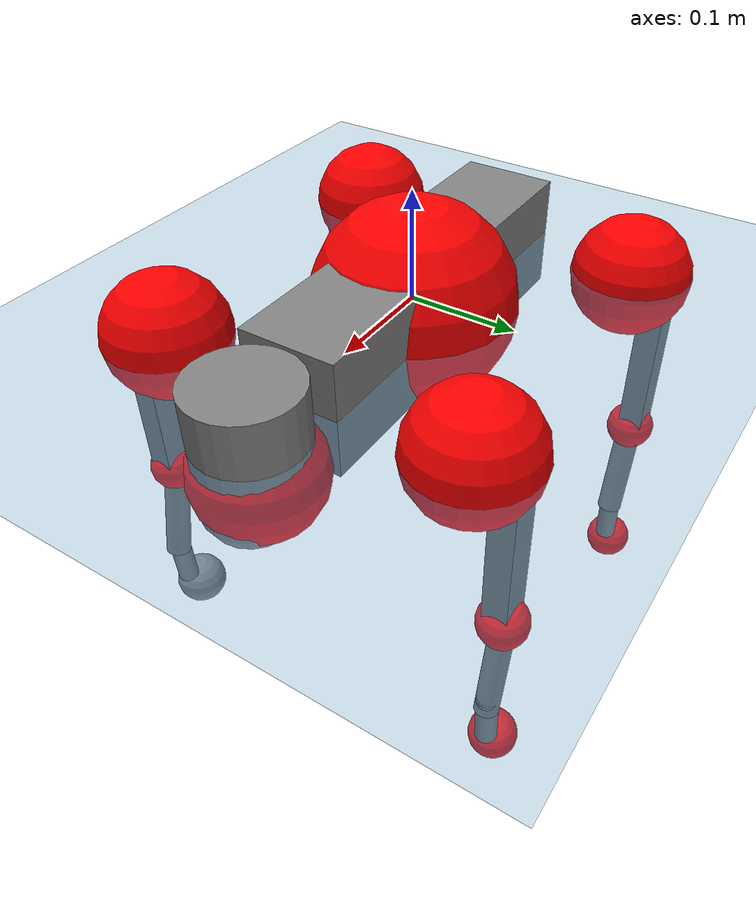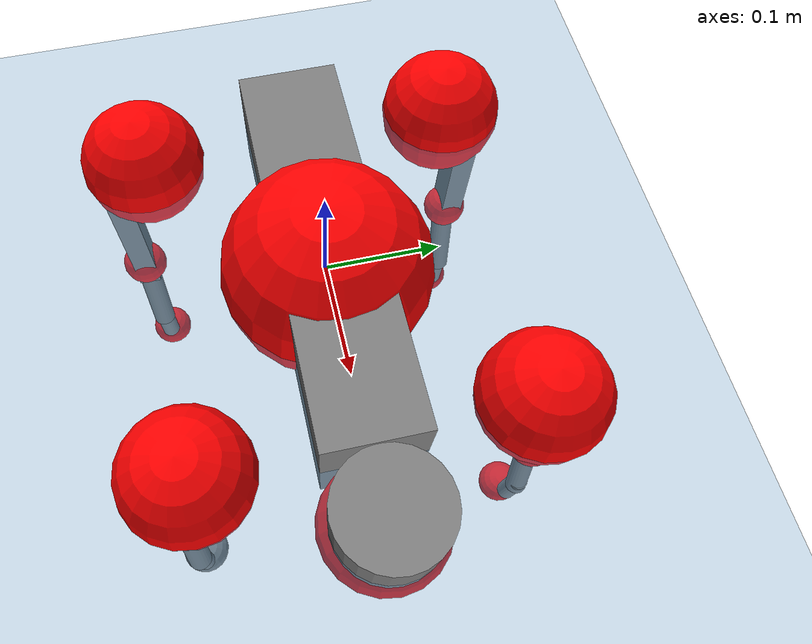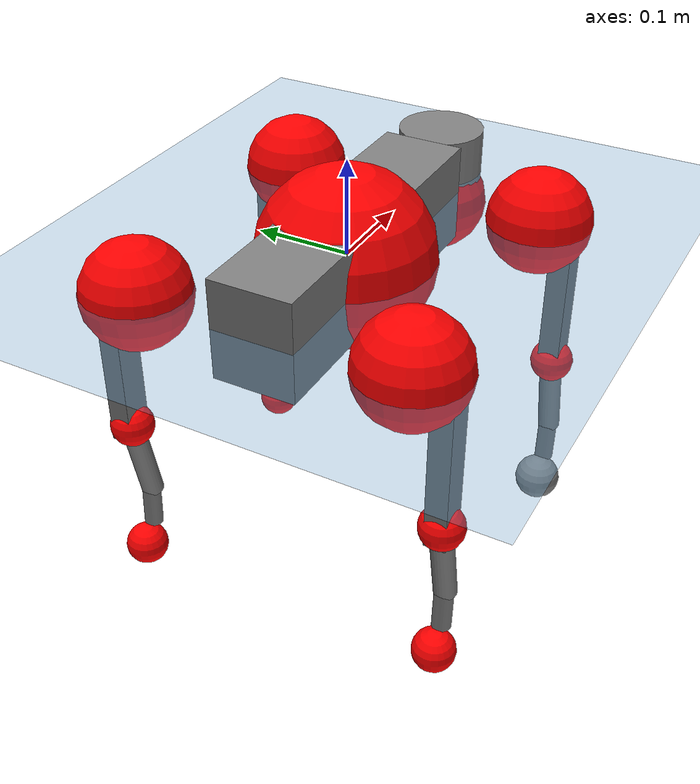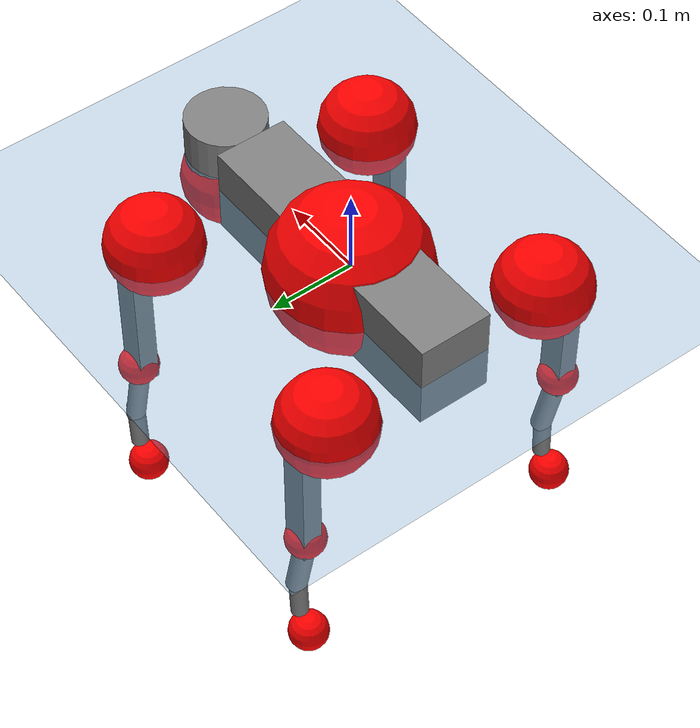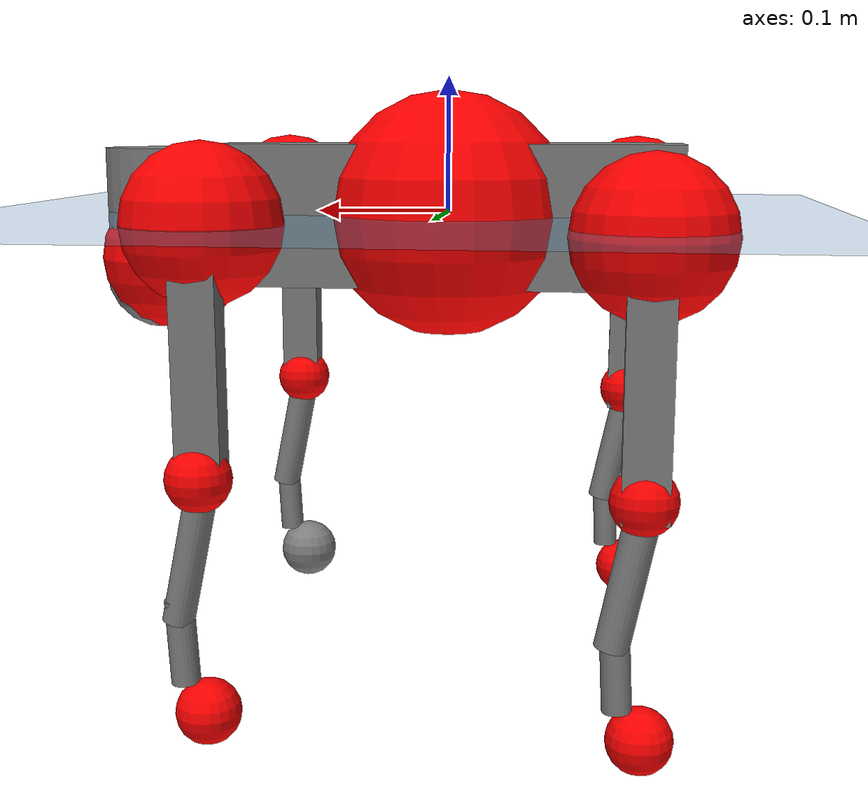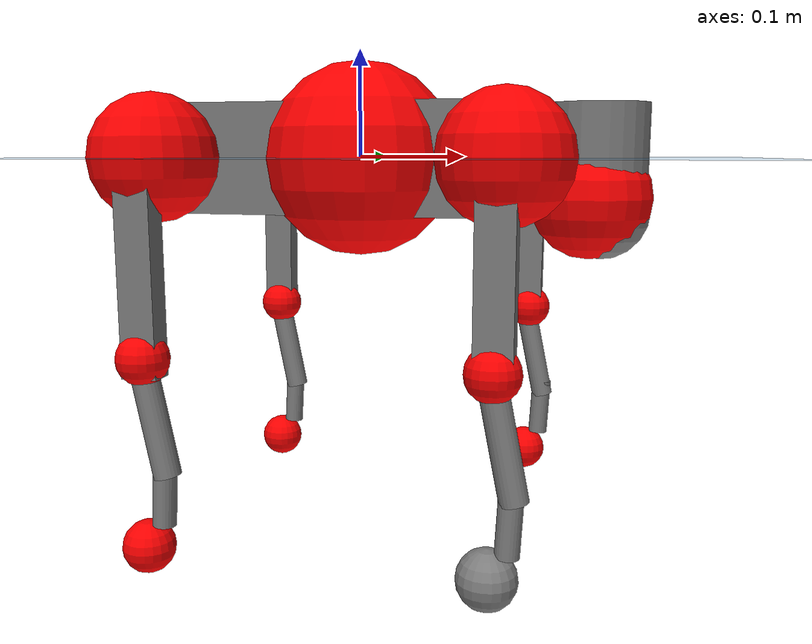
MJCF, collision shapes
<mujoco model="go2">
  <compiler angle="radian" assetdir="assets" balanceinertia="true" inertiafromgeom="false"/>

  <option timestep="0.005" density="1.2" viscosity="2e-05"/>

  <size nkey="1"/>

  <visual>
    <quality shadowsize="8192"/>
    <map shadowclip="0.5"/>
  </visual>

  <default>
    <default class="/">
      <geom contype="0" conaffinity="0" group="1" solref="-1000 -80"/>
      <site size="0.01 0.005 0.005" group="5"/>
      <general forcelimited="true" biastype="affine" gainprm="20" biasprm="0 -20 -0.5"/>
      <default class="go2">
        <joint armature="0.01" damping="0.01" frictionloss="0.2"/>
        <geom condim="1" margin="0.001"/>
        <default class="visual">
          <geom type="mesh" group="2"/>
        </default>
        <default class="collision">
          <geom group="3"/>
          <default class="foot">
            <geom size="0.022 0 0" condim="6" priority="1" friction="0.8 0.02 0.01" solimp="0.015 1 0.022"/>
          </default>
        </default>
        <default class="reward_collision_sphere">
          <geom group="5" rgba="1 0 0 1"/>
        </default>
      </default>
    </default>
  </default>

  <asset>
    <texture type="skybox" colorspace="auto" name="//unnamed_texture_0" builtin="gradient" rgb1="0.95 0.95 0.95" rgb2="0.95 0.95 0.95" width="100" height="600"/>
    <texture type="2d" colorspace="auto" name="texplane" builtin="checker" rgb1="0.345 0.575 0.748" rgb2="0.345 0.575 0.748" markrgb="1 1 1" width="512" height="512"/>
    <material name="MatPlane" class="/" texture="texplane" texuniform="true" texrepeat="2 2" specular="0.9"/>
    <material name="metal" class="/" rgba="0.9 0.95 0.95 1"/>
    <material name="black" class="/" rgba="0 0 0 1"/>
    <material name="white" class="/"/>
    <material name="gray" class="/" rgba="0.671705 0.692426 0.77427 1"/>
    <mesh name="base_0" class="/" file="base_0.obj"/>
    <mesh name="base_1" class="/" file="base_1.obj"/>
    <mesh name="base_2" class="/" file="base_2.obj"/>
    <mesh name="base_3" class="/" file="base_3.obj"/>
    <mesh name="base_4" class="/" file="base_4.obj"/>
    <mesh name="hip_0" class="/" file="hip_0.obj"/>
    <mesh name="hip_1" class="/" file="hip_1.obj"/>
    <mesh name="thigh_0" class="/" file="thigh_0.obj"/>
    <mesh name="thigh_1" class="/" file="thigh_1.obj"/>
    <mesh name="thigh_mirror_0" class="/" file="thigh_mirror_0.obj"/>
    <mesh name="thigh_mirror_1" class="/" file="thigh_mirror_1.obj"/>
    <mesh name="calf_0" class="/" file="calf_0.obj"/>
    <mesh name="calf_1" class="/" file="calf_1.obj"/>
    <mesh name="calf_mirror_0" class="/" file="calf_mirror_0.obj"/>
    <mesh name="calf_mirror_1" class="/" file="calf_mirror_1.obj"/>
    <mesh name="foot" class="/" file="foot.obj"/>
  </asset>

  <worldbody>
    <geom name="floor" class="/" size="100 100 0.125" type="plane" group="0" material="MatPlane"/>
    <light name="toplight_shadow" class="/" pos="0 0 5" dir="0.0990148 0.0990148 -0.990148" type="directional" ambient="0.04 0.04 0.04" diffuse="0.55 0.55 0.55" specular="0.12 0.12 0.12"/>
    <light name="toplight_fill" class="/" pos="0 0 5" dir="0.0990148 0.0990148 -0.990148" type="directional" castshadow="false" ambient="0.04 0.04 0.04" diffuse="0.3 0.3 0.3" specular="0.08 0.08 0.08"/>
    <body name="trunk" childclass="go2" pos="-0.000249865 0.00163856 -0.0017059" quat="1 -0.000318709 0.000320217 0.000715263">
      <inertial pos="0.0166366 0.00622647 -0.00630975" quat="0.000792633 0.714239 -0.000544483 0.699901" mass="5.69644" diaginertia="0.033935 0.288333 0.00729858"/>
      <joint name="//unnamed_joint_0" type="free" armature="0" damping="0" frictionloss="0"/>
      <geom name="//unnamed_geom_1" class="visual" material="black" mesh="base_0"/>
      <geom name="//unnamed_geom_2" class="visual" material="black" mesh="base_1"/>
      <geom name="//unnamed_geom_3" class="visual" material="black" mesh="base_2"/>
      <geom name="//unnamed_geom_4" class="visual" material="white" mesh="base_3"/>
      <geom name="//unnamed_geom_5" class="visual" material="gray" mesh="base_4"/>
      <geom name="trunk_1" class="collision" size="0.174185 0.0432915 0.0527833" type="box"/>
      <geom name="trunk_2" class="collision" size="0.0463011 0.041671" pos="0.220019 0 0.00780969" type="cylinder"/>
      <geom name="trunk_3" class="collision" size="0.043523" pos="0.226195 0 -0.0468582"/>
      <geom name="//unnamed_geom_9" class="reward_collision_sphere" size="0.0926022"/>
      <geom name="//unnamed_geom_10" class="reward_collision_sphere" size="0.0555613" pos="0.216159 0 -0.0351436"/>
      <site name="imu" pos="-0.0303113 0.00780395 0.0407726" size="0.00926022"/>
      <camera name="track" pos="0 -2.4502 0" quat="0.707107 0.707107 0 0" mode="trackcom"/>
      <camera name="ego_camera" pos="0.240863 0 0.0351436" quat="-0.5 -0.5 0.5 0.5"/>
      <body name="FL_hip" pos="0.150048 0.057989 0.00182003" quat="1 0.000228875 -0.000586187 0.000752415">
        <inertial pos="-0.00453599 0.00599095 0.00162792" quat="0.485681 0.519262 0.520175 0.473179" mass="0.558728" diaginertia="0.00024405 0.00168317 0.000140991"/>
        <joint name="FL_hip_joint" pos="0 0 0" axis="0.999991 0.00164995 0.00393571" range="-1.04481 1.0002" armature="0.0088557" damping="0.0245415" frictionloss="0.187266"/>
        <geom name="//unnamed_geom_11" class="visual" material="metal" mesh="hip_0"/>
        <geom name="//unnamed_geom_12" class="visual" material="gray" mesh="hip_1"/>
        <geom name="//unnamed_geom_13" class="collision" size="0.042597 0.0185204" pos="0 0.098008 0" quat="0.707107 0.707107 0 0" type="cylinder"/>
        <geom name="//unnamed_geom_14" class="reward_collision_sphere" size="0.0555613" pos="0 0.085757 0"/>
        <body name="FL_thigh" pos="-0.00323078 0.116799 0.00179629" quat="0.999994 0.0012049 0.00309609 0.00016545">
          <inertial pos="-0.00435754 -0.0340094 -0.027683" quat="0.827572 0.0820932 -0.0189411 0.555002" mass="0.91009" diaginertia="0.00171743 0.0148621 0.000253777"/>
          <joint name="FL_thigh_joint" pos="0 0 0" axis="0.0093246 0.999956 -0.00090909" stiffness="0.000231531" range="-1.53461 3.59493" armature="0.00643766" damping="0.0238696" frictionloss="0.189681"/>
          <geom name="//unnamed_geom_15" class="visual" material="metal" mesh="thigh_0"/>
          <geom name="//unnamed_geom_16" class="visual" material="gray" mesh="thigh_1"/>
          <geom name="//unnamed_geom_17" class="collision" size="0.0986214 0.0113438 0.0157424" pos="0 0 -0.0831732" quat="0.707107 0 0.707107 0" type="box"/>
          <body name="FL_calf" pos="0.00201696 0.00228853 -0.169704" quat="1 -0.000323211 -0.000791788 -8.35157e-05">
            <inertial pos="0.00933086 0.000389022 -0.107122" quat="0.710259 0.00241166 0.00204168 0.703934" mass="0.198139" diaginertia="0.000412735 0.00383465 1.52613e-05"/>
            <joint name="FL_calf_joint" pos="0 0 0" axis="0.00176148 0.999998 0.000286494" range="-2.85692 -0.901908" armature="0.00946526" damping="0.0263832" frictionloss="0.199808"/>
            <geom name="//unnamed_geom_18" class="visual" material="gray" mesh="calf_0"/>
            <geom name="//unnamed_geom_19" class="visual" material="black" mesh="calf_1"/>
            <geom name="FL_calf0" class="collision" size="0.0111123 0.0555613" pos="0.00617598 0 -0.0468582" quat="0.994493 0 -0.104807 0" type="cylinder"/>
            <geom name="//unnamed_geom_21" class="collision" size="0.0101862 0.0300957" pos="0.01544 0 -0.115583" quat="0.999688 0 0.0249974 0" type="cylinder"/>
            <geom name="//unnamed_geom_22" class="visual" pos="0 0 -0.166346" quat="1 0 0 0" material="black" mesh="foot"/>
            <geom name="FL_foot" class="foot" size="0.0199426" pos="-0.001544 0 -0.166346"/>
            <geom name="//unnamed_geom_24" class="reward_collision_sphere" size="0.0231506"/>
            <geom name="//unnamed_geom_25" class="reward_collision_sphere" size="0.0231506" pos="-0.001544 0 -0.166346"/>
            <site name="FL_foot" class="foot" pos="-0.001544 0 -0.166346" size="0.00926022"/>
          </body>
        </body>
      </body>
      <body name="FR_hip" pos="0.155626 -0.0568435 0.00172766" quat="0.999999 -0.000766342 -0.000496735 -0.00101478">
        <inertial pos="-0.00621962 -0.00112832 -0.00142459" quat="0.482568 0.50202 0.517007 0.497803" mass="0.53362" diaginertia="0.000250107 0.00164263 0.000142664"/>
        <joint name="FR_hip_joint" pos="0 0 0" axis="0.999992 0.00407603 0.00025792" stiffness="0.0369778" range="-1.00453 0.96838" armature="0.00895762" damping="0.0268101" frictionloss="0.202731"/>
        <geom name="//unnamed_geom_26" class="visual" pos="0 3.86908e-09 1.65953e-07" quat="4.63268e-05 1 0 0" material="metal" mesh="hip_0"/>
        <geom name="//unnamed_geom_27" class="visual" pos="0 6.27224e-09 -4.10465e-07" quat="4.63268e-05 1 0 0" material="gray" mesh="hip_1"/>
        <geom name="//unnamed_geom_28" class="collision" size="0.042597 0.0185204" pos="0 -0.098008 0" quat="0.707107 0.707107 0 0" type="cylinder"/>
        <geom name="//unnamed_geom_29" class="reward_collision_sphere" size="0.0555613" pos="0 -0.085757 0"/>
        <body name="FR_thigh" pos="-0.00109723 -0.116664 0.00635909" quat="1 -0.000305587 -8.08488e-05 -0.000349821">
          <inertial pos="-0.0029351 0.0287198 -0.0307999" quat="0.555007 -0.0146429 0.0842981 0.827434" mass="0.944408" diaginertia="0.00168017 0.0163195 0.000258392"/>
          <joint name="FR_thigh_joint" pos="0 0 0" axis="-0.000720946 -1 -0.000238819" range="-3.51167 1.59638" armature="0.0112064" damping="0" frictionloss="0.195566"/>
          <geom name="//unnamed_geom_30" class="visual" material="metal" mesh="thigh_mirror_0"/>
          <geom name="//unnamed_geom_31" class="visual" material="gray" mesh="thigh_mirror_1"/>
          <geom name="//unnamed_geom_32" class="collision" size="0.0986214 0.0113438 0.0157424" pos="0 0 -0.0831732" quat="0.707107 0 0.707107 0" type="box"/>
          <body name="FR_calf" pos="-0.00089801 -0.000460203 -0.170476" quat="0.999999 -0.000649539 0.000999955 0.00015142">
            <inertial pos="0.00603092 -0.000765858 -0.110161" quat="0.703816 -0.00838034 0.00236815 0.710329" mass="0.175782" diaginertia="0.000370323 0.0036143 1.43515e-05"/>
            <joint name="FR_calf_joint" pos="0 0 0" axis="0.0158051 -0.999875 0.000187694" range="0.870114 2.76016" armature="0.00825927" damping="0.0339369" frictionloss="0.173686"/>
            <geom name="//unnamed_geom_33" class="visual" material="gray" mesh="calf_mirror_0"/>
            <geom name="//unnamed_geom_34" class="visual" material="black" mesh="calf_mirror_1"/>
            <geom name="FR_calf0" class="collision" size="0.0120383 0.0555613" pos="0.00771998 0 -0.0468582" quat="0.995004 0 -0.0998334 0" type="cylinder"/>
            <geom name="//unnamed_geom_36" class="collision" size="0.0101862 0.0300957" pos="0.01544 0 -0.115583" quat="0.999688 0 0.0249974 0" type="cylinder"/>
            <geom name="//unnamed_geom_37" class="visual" pos="0 0 -0.166346" quat="1 0 0 0" material="black" mesh="foot"/>
            <geom name="FR_foot" class="foot" size="0.0252887" pos="-0.001544 0 -0.166346"/>
            <geom name="//unnamed_geom_39" class="reward_collision_sphere" size="0.0231506"/>
            <geom name="//unnamed_geom_40" class="reward_collision_sphere" size="0.0231506" pos="-0.001544 0 -0.166346"/>
            <site name="FR_foot" class="foot" pos="-0.001544 0 -0.166346" size="0.00926022"/>
          </body>
        </body>
      </body>
      <body name="RL_hip" pos="-0.149323 0.0567582 -0.00413099" quat="0.999999 -0.000823882 -0.000117248 -0.0006369">
        <inertial pos="0.00631615 0.000352282 -0.00119704" quat="0.507886 0.48876 0.500546 0.502613" mass="0.576571" diaginertia="0.000232257 0.00162108 0.000136585"/>
        <joint name="RL_hip_joint" pos="0 0 0" axis="-0.999915 -0.0119103 -0.00528928" range="-1.12663 1.01951" armature="0.00825172" damping="0.00838538" frictionloss="0.15903"/>
        <geom name="//unnamed_geom_41" class="visual" pos="7.81549e-11 0 1.53202e-08" quat="4.63268e-05 0 1 0" material="metal" mesh="hip_0"/>
        <geom name="//unnamed_geom_42" class="visual" pos="1.26698e-10 0 1.35868e-08" quat="4.63268e-05 0 1 0" material="gray" mesh="hip_1"/>
        <geom name="//unnamed_geom_43" class="collision" size="0.042597 0.0185204" pos="0 0.098008 0" quat="0.707107 0.707107 0 0" type="cylinder"/>
        <geom name="//unnamed_geom_44" class="reward_collision_sphere" size="0.0555613" pos="0 0.085757 0"/>
        <body name="RL_thigh" pos="0.00105252 0.116249 0.00126116" quat="0.999997 0.00101406 0.00110815 0.00215014">
          <inertial pos="-0.00302132 -0.0346865 -0.024275" quat="0.828759 0.0834325 -0.0337357 0.552322" mass="0.988148" diaginertia="0.00164541 0.0160597 0.000241895"/>
          <joint name="RL_thigh_joint" pos="0 0 0" axis="-0.012278 0.999431 0.0313997" range="-0.570712 4.51264" armature="0.00859356" damping="0" frictionloss="0.189999"/>
          <geom name="//unnamed_geom_45" class="visual" material="metal" mesh="thigh_0"/>
          <geom name="//unnamed_geom_46" class="visual" material="gray" mesh="thigh_1"/>
          <geom name="//unnamed_geom_47" class="collision" size="0.0986214 0.0113438 0.0157424" pos="0 0 -0.0831732" quat="0.707107 0 0.707107 0" type="box"/>
          <body name="RL_calf" pos="0.000496182 -0.00268162 -0.169184" quat="1 -2.45217e-05 5.06243e-05 7.52231e-05">
            <inertial pos="0.00539085 -0.00438787 -0.112507" quat="0.708612 0.00955098 -0.00492281 0.705516" mass="0.193009" diaginertia="0.000432113 0.00428254 1.64775e-05"/>
            <joint name="RL_calf_joint" pos="0 0 0" axis="0.00589132 0.999981 -0.00163434" range="-2.84826 -0.843678" armature="0.00617585" damping="0" frictionloss="0.197694"/>
            <geom name="//unnamed_geom_48" class="visual" material="gray" mesh="calf_0"/>
            <geom name="//unnamed_geom_49" class="visual" material="black" mesh="calf_1"/>
            <geom name="RL_calf0" class="collision" size="0.0120383 0.0555613" pos="0.00771998 0 -0.0468582" quat="0.995004 0 -0.0998334 0" type="cylinder"/>
            <geom name="//unnamed_geom_51" class="collision" size="0.0101862 0.0300957" pos="0.01544 0 -0.115583" quat="0.999688 0 0.0249974 0" type="cylinder"/>
            <geom name="//unnamed_geom_52" class="visual" pos="0 0 -0.166346" quat="1 0 0 0" material="black" mesh="foot"/>
            <geom name="RL_foot" class="foot" size="0.0223717" pos="-0.001544 0 -0.166346"/>
            <geom name="//unnamed_geom_54" class="reward_collision_sphere" size="0.0231506"/>
            <geom name="//unnamed_geom_55" class="reward_collision_sphere" size="0.0231506" pos="-0.001544 0 -0.166346"/>
            <site name="RL_foot" class="foot" pos="-0.001544 0 -0.166346" size="0.00926022"/>
          </body>
        </body>
      </body>
      <body name="RR_hip" pos="-0.143209 -0.0564133 0.00146445" quat="0.999994 0.00154356 -0.00317746 -0.000679177">
        <inertial pos="0.00568974 -0.00401981 -0.0017273" quat="0.499228 0.496786 0.498132 0.505806" mass="0.541034" diaginertia="0.000243132 0.00167898 0.000126652"/>
        <joint name="RR_hip_joint" pos="0 0 0" axis="-0.99997 -0.00567011 -0.00521789" range="-1.09235 1.01208" armature="0.00689889" damping="0.00751504" frictionloss="0.175575"/>
        <geom name="//unnamed_geom_56" class="visual" pos="-6.24683e-11 3.86908e-09 -1.50633e-07" quat="2.14617e-09 4.63268e-05 4.63268e-05 -1" material="metal" mesh="hip_0"/>
        <geom name="//unnamed_geom_57" class="visual" pos="-1.65498e-10 6.27224e-09 4.24052e-07" quat="2.14617e-09 4.63268e-05 4.63268e-05 -1" material="gray" mesh="hip_1"/>
        <geom name="//unnamed_geom_58" class="collision" size="0.042597 0.0185204" pos="0 -0.098008 0" quat="0.707107 0.707107 0 0" type="cylinder"/>
        <geom name="//unnamed_geom_59" class="reward_collision_sphere" size="0.0555613" pos="0 -0.085757 0"/>
        <body name="RR_thigh" pos="0.00173996 -0.120231 -0.00173271" quat="1 -0.000328231 -0.000143506 0.000276693">
          <inertial pos="-0.00382394 0.0299887 -0.0265999" quat="0.550634 -0.00848504 0.0863319 0.830227" mass="0.96082" diaginertia="0.00163064 0.0161833 0.000267232"/>
          <joint name="RR_thigh_joint" pos="0 0 0" axis="-0.00052492 -0.999966 0.00818752" range="-4.50988 0.387758" armature="0.0121446" damping="0" frictionloss="0.168624"/>
          <geom name="//unnamed_geom_60" class="visual" material="metal" mesh="thigh_mirror_0"/>
          <geom name="//unnamed_geom_61" class="visual" material="gray" mesh="thigh_mirror_1"/>
          <geom name="//unnamed_geom_62" class="collision" size="0.0986214 0.0113438 0.0157424" pos="0 0 -0.0831732" quat="0.707107 0 0.707107 0" type="box"/>
          <body name="RR_calf" pos="-0.000991709 -0.000768157 -0.165787" quat="0.999999 -0.000844721 0.000548321 -0.000827745">
            <inertial pos="0.00537466 0.00313663 -0.109672" quat="0.702493 -0.00691707 0.00193725 0.711655" mass="0.18623" diaginertia="0.000414759 0.00401432 1.49153e-05"/>
            <joint name="RR_calf_joint" pos="0 0 0" axis="-0.00127504 -0.999886 0.0150615" stiffness="0.00732283" range="0.747902 2.72675" armature="0.00857389" damping="0.00147482" frictionloss="0.181334"/>
            <geom name="//unnamed_geom_63" class="visual" material="gray" mesh="calf_mirror_0"/>
            <geom name="//unnamed_geom_64" class="visual" material="black" mesh="calf_mirror_1"/>
            <geom name="RR_calf0" class="collision" size="0.0120383 0.0555613" pos="0.00771998 0 -0.0468582" quat="0.995004 0 -0.0998334 0" type="cylinder"/>
            <geom name="//unnamed_geom_66" class="collision" size="0.0101862 0.0300957" pos="0.01544 0 -0.115583" quat="0.999688 0 0.0249974 0" type="cylinder"/>
            <geom name="//unnamed_geom_67" class="visual" pos="0 0 -0.166346" quat="1 0 0 0" material="black" mesh="foot"/>
            <geom name="RR_foot" class="foot" size="0.0148195" pos="-0.001544 0 -0.166346"/>
            <geom name="//unnamed_geom_69" class="reward_collision_sphere" size="0.0231506"/>
            <geom name="//unnamed_geom_70" class="reward_collision_sphere" size="0.0231506" pos="-0.001544 0 -0.166346"/>
            <site name="RR_foot" class="foot" pos="-0.001544 0 -0.166346" size="0.00926022"/>
          </body>
        </body>
      </body>
    </body>
  </worldbody>

  <contact>
    <pair class="/" geom1="floor" geom2="FL_foot" name="//unnamed_contact_0"/>
    <pair class="/" geom1="floor" geom2="FR_foot" name="//unnamed_contact_1"/>
    <pair class="/" geom1="floor" geom2="RL_foot" name="//unnamed_contact_2"/>
    <pair class="/" geom1="floor" geom2="RR_foot" name="//unnamed_contact_3"/>
  </contact>

  <actuator>
    <general name="FL_hip" class="/" joint="FL_hip_joint" forcerange="-22.2046 22.2046" gainprm="18.2847" biasprm="0 -18.2847 -0.479582"/>
    <general name="FL_thigh" class="/" joint="FL_thigh_joint" forcerange="-22.7176 22.7176" gainprm="18.2847" biasprm="0 -18.2847 -0.479582"/>
    <general name="FL_calf" class="/" joint="FL_calf_joint" forcerange="-44.0365 44.0365" gainprm="18.2847" biasprm="0 -18.2847 -0.479582"/>
    <general name="FR_hip" class="/" joint="FR_hip_joint" forcerange="-21.9441 21.9441" gainprm="18.2847" biasprm="0 -18.2847 -0.479582"/>
    <general name="FR_thigh" class="/" joint="FR_thigh_joint" forcerange="-20.9288 20.9288" gainprm="18.2847" biasprm="0 -18.2847 -0.479582"/>
    <general name="FR_calf" class="/" joint="FR_calf_joint" forcerange="-45.7579 45.7579" gainprm="18.2847" biasprm="0 -18.2847 -0.479582"/>
    <general name="RL_hip" class="/" joint="RL_hip_joint" forcerange="-20.7268 20.7268" gainprm="18.2847" biasprm="0 -18.2847 -0.479582"/>
    <general name="RL_thigh" class="/" joint="RL_thigh_joint" forcerange="-21.4584 21.4584" gainprm="18.2847" biasprm="0 -18.2847 -0.479582"/>
    <general name="RL_calf" class="/" joint="RL_calf_joint" forcerange="-45.4957 45.4957" gainprm="18.2847" biasprm="0 -18.2847 -0.479582"/>
    <general name="RR_hip" class="/" joint="RR_hip_joint" forcerange="-21.8111 21.8111" gainprm="18.2847" biasprm="0 -18.2847 -0.479582"/>
    <general name="RR_thigh" class="/" joint="RR_thigh_joint" forcerange="-22.9023 22.9023" gainprm="18.2847" biasprm="0 -18.2847 -0.479582"/>
    <general name="RR_calf" class="/" joint="RR_calf_joint" forcerange="-34.4616 34.4616" gainprm="18.2847" biasprm="0 -18.2847 -0.479582"/>
  </actuator>

  <sensor>
    <gyro site="imu" name="imu_angular_velocity"/>
    <velocimeter site="imu" name="imu_linear_velocity"/>
    <framelinvel objtype="site" objname="FL_foot" name="FL_foot_global_linear_velocity"/>
    <framelinvel objtype="site" objname="FR_foot" name="FR_foot_global_linear_velocity"/>
    <framelinvel objtype="site" objname="RL_foot" name="RL_foot_global_linear_velocity"/>
    <framelinvel objtype="site" objname="RR_foot" name="RR_foot_global_linear_velocity"/>
  </sensor>

  <keyframe>
    <key name="home" qpos="0 0 0.325 1 0 0 0 0.1 0.8 -1.5 -0.1 -0.8 1.5 -0.1 0.8 -1.5 0.1 -0.8 1.5"/>
  </keyframe>
</mujoco>
